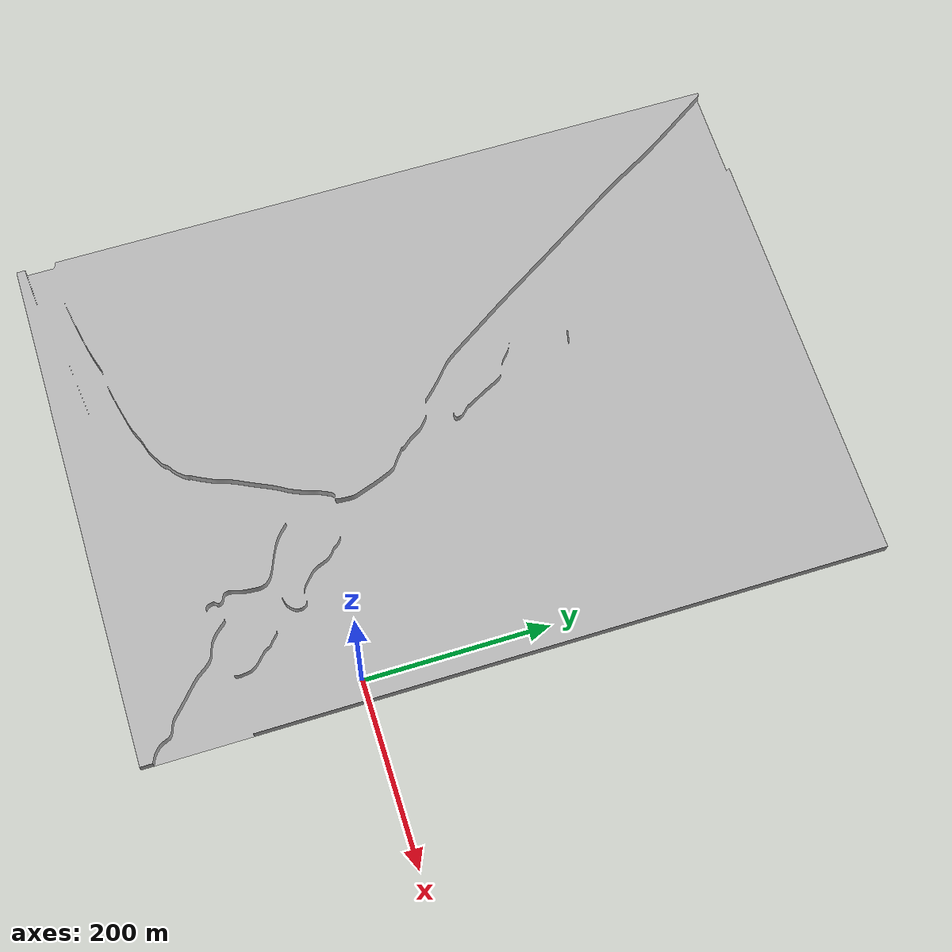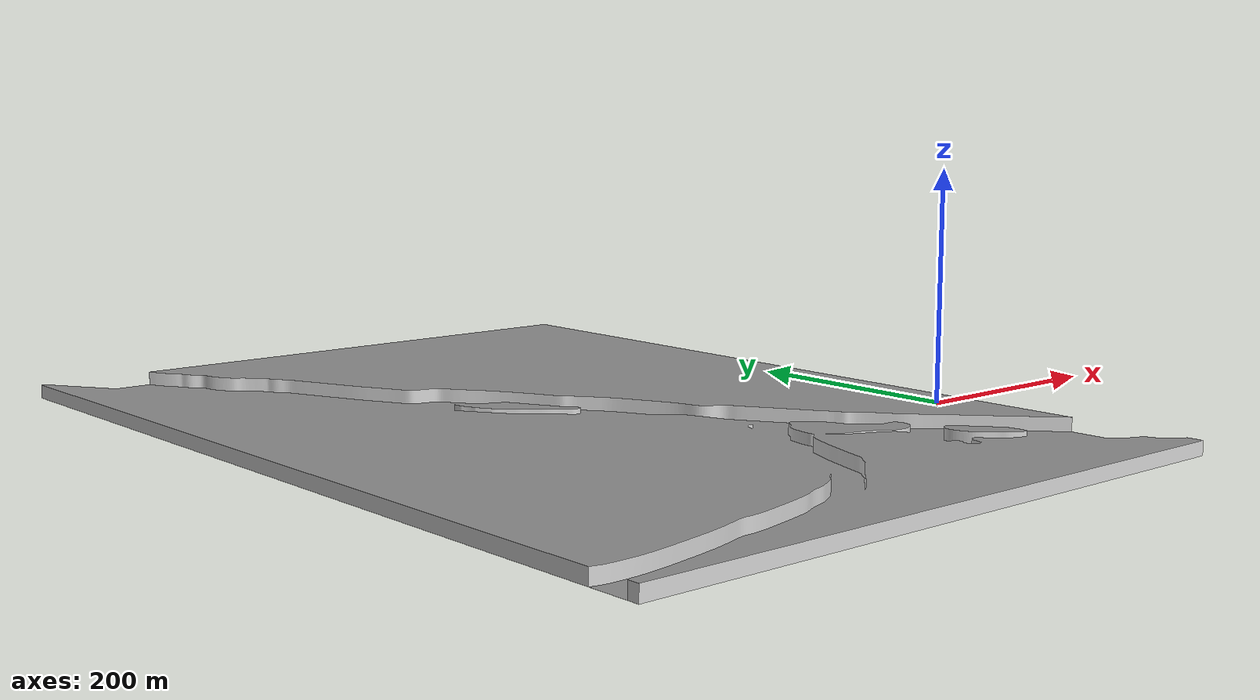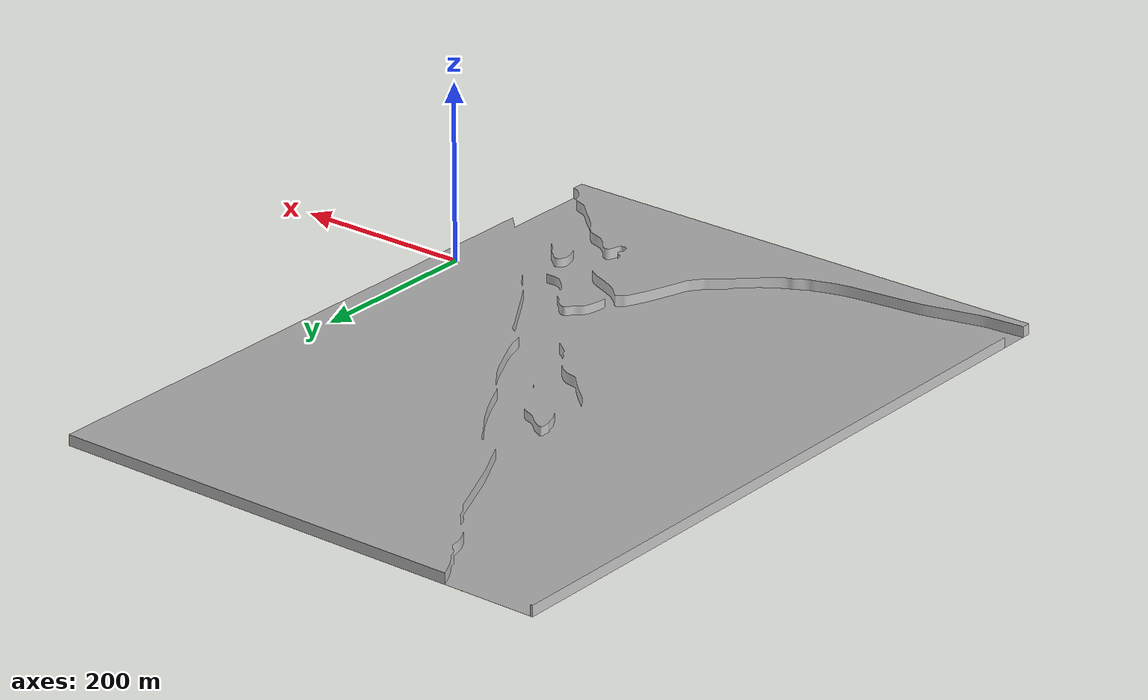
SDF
<?xml version="1.0" encoding="UTF-8"?>
<sdf version="1.6">
  <model name="windingvalleyheightmap">
    <pose>0 0 0 0 0 0</pose>
    <static>true</static>
    <link name="link">
      <visual name="visual_terrain">
        <geometry>
          <mesh>
            <uri>model://winding_valley_heightmap/meshes/river.stl</uri>
          </mesh>
        </geometry>
      </visual>

      <collision name="collision">
        <geometry>
          <mesh>
            <uri>model://winding_valley_heightmap/meshes/river.stl</uri>
          </mesh>
        </geometry>
      </collision>
    </link>
  </model>
</sdf>
